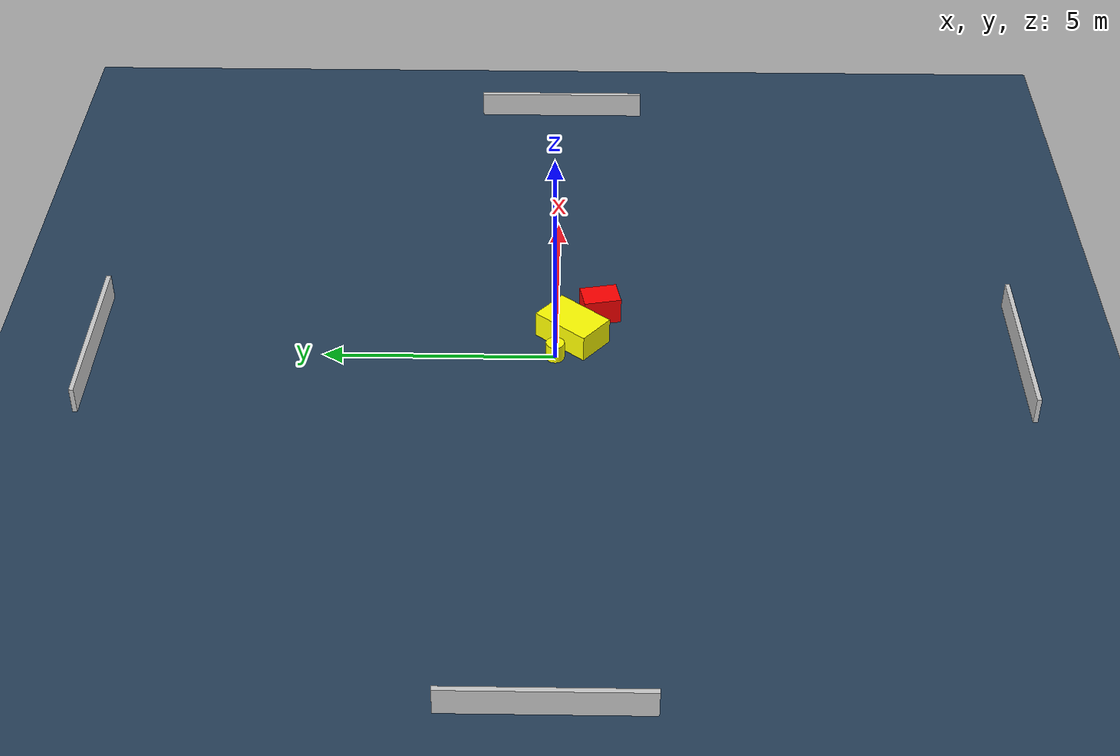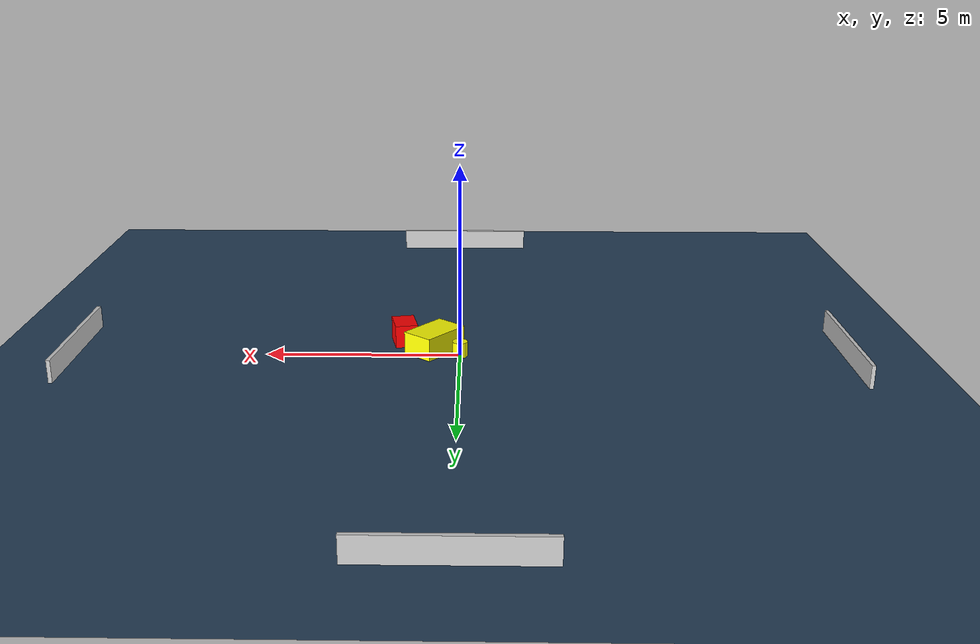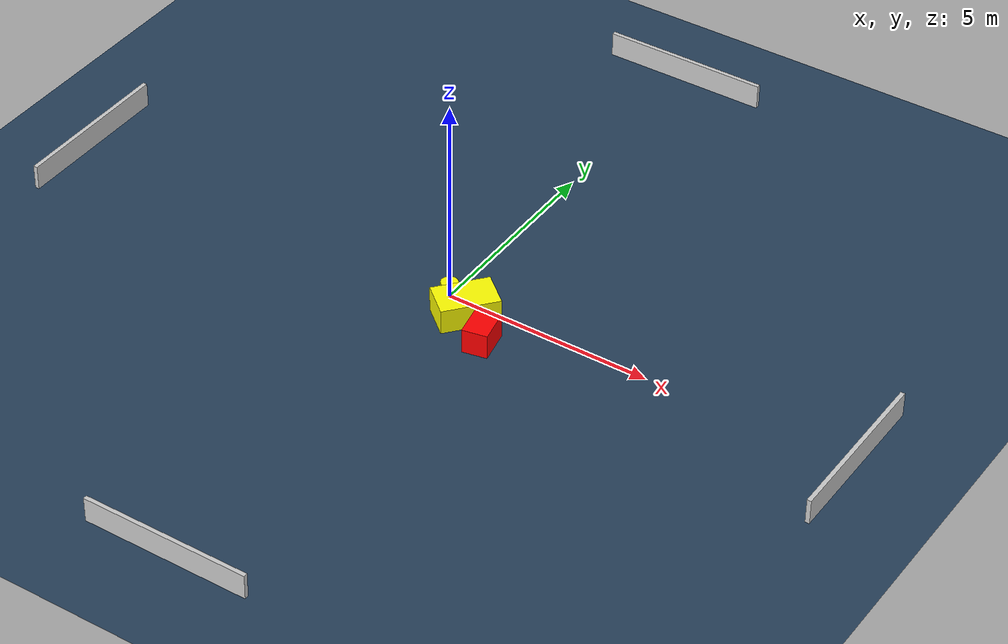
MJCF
<?xml version="1.0" ?>
<mujoco model="generated_environment">
  <option timestep="0.01" integrator="RK4" cone="elliptic"/>
  <default>
    <geom density="1"/>
  </default>
  <asset>
    <texture builtin="gradient" height="3072" name="skybox" rgb1="0.3 0.5 0.7" rgb2="0 0 0" type="skybox" width="512"/>
    <texture builtin="checker" height="300" name="groundplane" rgb1="0.2 0.3 0.4" rgb2="0.1 0.2 0.3" type="2d" width="300"/>
    <material name="groundplane" reflectance="0.2" texrepeat="5 5" texture="groundplane"/>
  </asset>
  <worldbody>
    <light dir="0 0 -1" directional="true" pos="0 0 1.5"/>
    <geom condim="3" friction="0.5 0.005 0.001" material="groundplane" name="floor" pos="0 0 0" size="0 0 0.05" type="plane"/>
    <body name="walls">
      <geom name="wall_1" condim="4" pos="-10.0 0.0 0.3" rgba="0.800000011920929 0.800000011920929 0.800000011920929 1.0" size="0.05 2.0 0.3" type="box"/>
      <geom name="wall_2" condim="4" pos="10.0 0.0 0.3" rgba="0.800000011920929 0.800000011920929 0.800000011920929 1.0" size="0.05 2.0 0.3" type="box"/>
      <geom name="wall_3" condim="4" pos="0.0 -10.0 0.3" rgba="0.800000011920929 0.800000011920929 0.800000011920929 1.0" size="2.0 0.05 0.3" type="box"/>
      <geom name="wall_4" condim="4" pos="0.0 10.0 0.3" rgba="0.800000011920929 0.800000011920929 0.800000011920929 1.0" size="2.0 0.05 0.3" type="box"/>
    </body>
    <body name="robot">
      <joint name="joint_x" type="slide" pos="0 0 0" axis="1 0 0"/>
      <joint name="joint_y" type="slide" pos="0 0 0" axis="0 1 0"/>
      <geom name="robot" type="cylinder" pos="0.0 0.0 0.2" size="0.2 0.2 0.0" mass="5.0" friction="1.0 0.005 0.0001" condim="4" rgba="1.0 1.0 0.0 1.0"/>
    </body>
    <body name="obstacle_1_movable">
      <geom name="obstacle_1_movable" condim="4" pos="0.667815252156743 -0.36972342358208543 0.3" euler="0 0 139.90241675294286" friction="0.0 0.005 0.001" rgba="1.0 1.0 0.0 1.0" size="0.43692359846295326 0.6830541802755459 0.3" type="box" mass="0.1"/>
      <joint type="free"/>
    </body>
    <body name="obstacle_2_static">
      <geom name="obstacle_2_static" condim="4" pos="1.4865940907239488 -0.9707251880762862 0.3" euler="0 0 191.3439447238139" friction="0.0 0.005 0.001" rgba="1.0 0.0 0.0 1.0" size="0.2960936061076198 0.40912008210759976 0.3" type="box"/>
    </body>
  </worldbody>
  <actuator>
    <motor name="actuator_x" joint="joint_x" gear="1" ctrlrange="-1 1"/>
    <motor name="actuator_y" joint="joint_y" gear="1" ctrlrange="-1 1"/>
  </actuator>
</mujoco>
